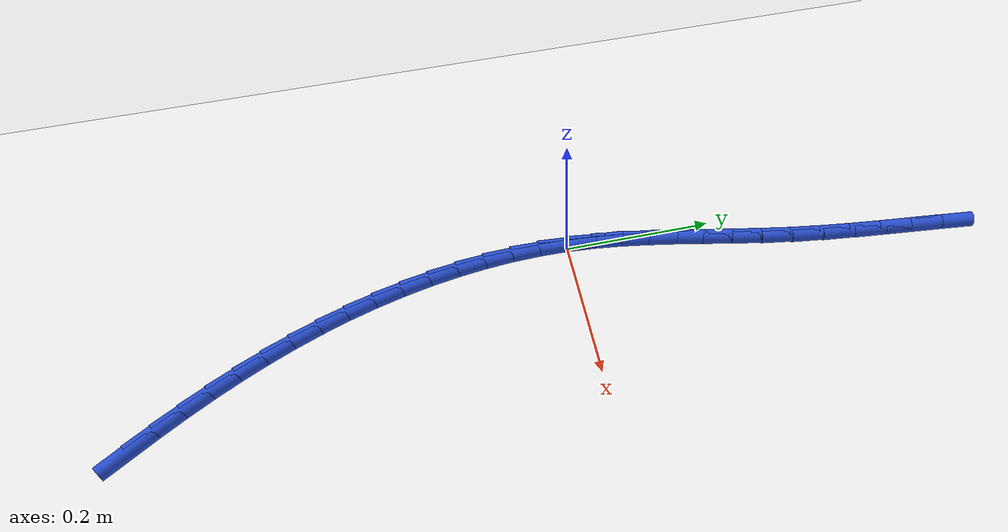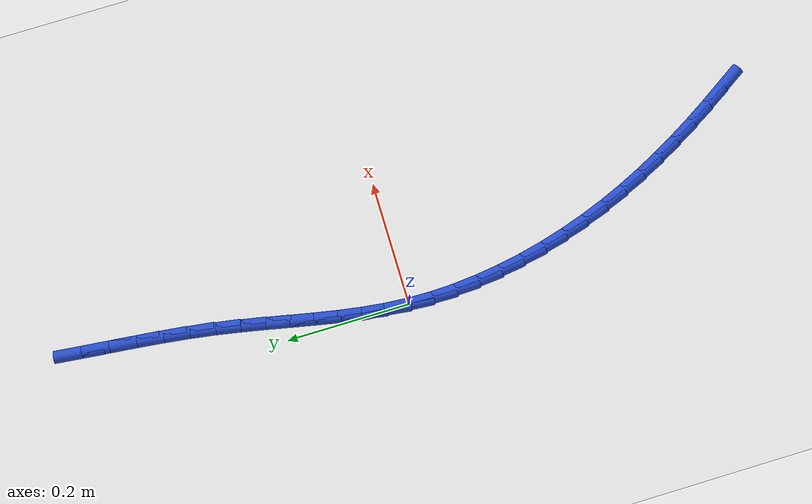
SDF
<sdf version="1.6">
 <world name="default">
  <model name="ground_plane">
   <static>1</static>
   <link name="link">
    <collision name="collision">
     <geometry><plane><normal>0 0 1</normal><size>100 100</size></plane></geometry>
     <surface><friction><ode><mu>100</mu><mu2>50</mu2></ode></friction></surface>
    </collision>
    <visual name="visual">
     <cast_shadows>0</cast_shadows>
     <geometry><plane><normal>0 0 1</normal><size>100 100</size></plane></geometry>
     <material>
      <script><uri>file://media/materials/scripts/gazebo.material</uri><name>Gazebo/WhiteGlow</name></script>
     </material>
    </visual>
   </link>
  </model>
  <model name="line">
   <link name="link_0">
    <pose>1.214306433183765e-17 -5.551115123125783e-17 0.01 0 1.57 1.4960967762465893</pose>
    <collision name="collision">
     <geometry><cylinder><radius>0.01</radius><length>0.08</length></cylinder></geometry>
    </collision>
    <visual name="visual">
     <material>
      <script><name>Gazebo/Blue</name><uri>file://media/materials/scripts/gazebo.material</uri></script>
     </material>
     <geometry><cylinder><radius>0.01</radius><length>0.08</length></cylinder></geometry>
    </visual>
   </link>
   <link name="link_1">
    <pose>0.002791364216330285 0.037298354604954585 0.01 0 1.57 1.4484200430386638</pose>
    <collision name="collision">
     <geometry><cylinder><radius>0.01</radius><length>0.08</length></cylinder></geometry>
    </collision>
    <visual name="visual">
     <material>
      <script><name>Gazebo/Blue</name><uri>file://media/materials/scripts/gazebo.material</uri></script>
     </material>
     <geometry><cylinder><radius>0.01</radius><length>0.08</length></cylinder></geometry>
    </visual>
   </link>
   <link name="link_2">
    <pose>0.007340194656034385 0.0742834623729324 0.01 0 1.57 1.411404170414992</pose>
    <collision name="collision">
     <geometry><cylinder><radius>0.01</radius><length>0.08</length></cylinder></geometry>
    </collision>
    <visual name="visual">
     <material>
      <script><name>Gazebo/Blue</name><uri>file://media/materials/scripts/gazebo.material</uri></script>
     </material>
     <geometry><cylinder><radius>0.01</radius><length>0.08</length></cylinder></geometry>
    </visual>
   </link>
   <link name="link_3">
    <pose>0.013272829891203326 0.11118809328527089 0.01 0 1.57 1.3855890138664382</pose>
    <collision name="collision">
     <geometry><cylinder><radius>0.01</radius><length>0.08</length></cylinder></geometry>
    </collision>
    <visual name="visual">
     <material>
      <script><name>Gazebo/Blue</name><uri>file://media/materials/scripts/gazebo.material</uri></script>
     </material>
     <geometry><cylinder><radius>0.01</radius><length>0.08</length></cylinder></geometry>
    </visual>
   </link>
   <link name="link_4">
    <pose>0.020215608493928106 0.14824501732330728 0.01 0 1.57 1.3710684263856114</pose>
    <collision name="collision">
     <geometry><cylinder><radius>0.01</radius><length>0.08</length></cylinder></geometry>
    </collision>
    <visual name="visual">
     <material>
      <script><name>Gazebo/Blue</name><uri>file://media/materials/scripts/gazebo.material</uri></script>
     </material>
     <geometry><cylinder><radius>0.01</radius><length>0.08</length></cylinder></geometry>
    </visual>
   </link>
   <link name="link_5">
    <pose>0.027794869036299765 0.1856870044683791 0.01 0 1.57 1.3675939372295634</pose>
    <collision name="collision">
     <geometry><cylinder><radius>0.01</radius><length>0.08</length></cylinder></geometry>
    </collision>
    <visual name="visual">
     <material>
      <script><name>Gazebo/Blue</name><uri>file://media/materials/scripts/gazebo.material</uri></script>
     </material>
     <geometry><cylinder><radius>0.01</radius><length>0.08</length></cylinder></geometry>
    </visual>
   </link>
   <link name="link_6">
    <pose>0.0356369500904093 0.22374682470182364 0.01 0 1.57 1.3746575311386873</pose>
    <collision name="collision">
     <geometry><cylinder><radius>0.01</radius><length>0.08</length></cylinder></geometry>
    </collision>
    <visual name="visual">
     <material>
      <script><name>Gazebo/Blue</name><uri>file://media/materials/scripts/gazebo.material</uri></script>
     </material>
     <geometry><cylinder><radius>0.01</radius><length>0.08</length></cylinder></geometry>
    </visual>
   </link>
   <link name="link_7">
    <pose>0.04336819022834772 0.2626572480049783 0.01 0 1.57 1.3915446354443641</pose>
    <collision name="collision">
     <geometry><cylinder><radius>0.01</radius><length>0.08</length></cylinder></geometry>
    </collision>
    <visual name="visual">
     <material>
      <script><name>Gazebo/Blue</name><uri>file://media/materials/scripts/gazebo.material</uri></script>
     </material>
     <geometry><cylinder><radius>0.01</radius><length>0.08</length></cylinder></geometry>
    </visual>
   </link>
   <link name="link_8">
    <pose>0.05061492802220603 0.30265104435918044 0.01 0 1.57 1.4170676760448138</pose>
    <collision name="collision">
     <geometry><cylinder><radius>0.01</radius><length>0.08</length></cylinder></geometry>
    </collision>
    <visual name="visual">
     <material>
      <script><name>Gazebo/Blue</name><uri>file://media/materials/scripts/gazebo.material</uri></script>
     </material>
     <geometry><cylinder><radius>0.01</radius><length>0.08</length></cylinder></geometry>
    </visual>
   </link>
   <link name="link_9">
    <pose>0.05701441893428005 0.34395108369674005 0.01 0 1.57 1.4424523275774874</pose>
    <collision name="collision">
     <geometry><cylinder><radius>0.01</radius><length>0.08</length></cylinder></geometry>
    </collision>
    <visual name="visual">
     <material>
      <script><name>Gazebo/Blue</name><uri>file://media/materials/scripts/gazebo.material</uri></script>
     </material>
     <geometry><cylinder><radius>0.01</radius><length>0.08</length></cylinder></geometry>
    </visual>
   </link>
   <link name="link_10">
    <pose>0.06250627943232127 0.3865060380124679 0.01 0 1.57 1.4594717351525122</pose>
    <collision name="collision">
     <geometry><cylinder><radius>0.01</radius><length>0.08</length></cylinder></geometry>
    </collision>
    <visual name="visual">
     <material>
      <script><name>Gazebo/Blue</name><uri>file://media/materials/scripts/gazebo.material</uri></script>
     </material>
     <geometry><cylinder><radius>0.01</radius><length>0.08</length></cylinder></geometry>
    </visual>
   </link>
   <link name="link_11">
    <pose>0.06736405370102008 0.42996175489721356 0.01 0 1.57 1.468521504528391</pose>
    <collision name="collision">
     <geometry><cylinder><radius>0.01</radius><length>0.08</length></cylinder></geometry>
    </collision>
    <visual name="visual">
     <material>
      <script><name>Gazebo/Blue</name><uri>file://media/materials/scripts/gazebo.material</uri></script>
     </material>
     <geometry><cylinder><radius>0.01</radius><length>0.08</length></cylinder></geometry>
    </visual>
   </link>
   <link name="link_12">
    <pose>0.07187853568005004 0.47394843889542354 0.01 0 1.57 1.4700692810529499</pose>
    <collision name="collision">
     <geometry><cylinder><radius>0.01</radius><length>0.08</length></cylinder></geometry>
    </collision>
    <visual name="visual">
     <material>
      <script><name>Gazebo/Blue</name><uri>file://media/materials/scripts/gazebo.material</uri></script>
     </material>
     <geometry><cylinder><radius>0.01</radius><length>0.08</length></cylinder></geometry>
    </visual>
   </link>
   <link name="link_13">
    <pose>0.07634051930908475 0.518096294551545 0.01 0 1.57 1.4642293117819987</pose>
    <collision name="collision">
     <geometry><cylinder><radius>0.01</radius><length>0.08</length></cylinder></geometry>
    </collision>
    <visual name="visual">
     <material>
      <script><name>Gazebo/Blue</name><uri>file://media/materials/scripts/gazebo.material</uri></script>
     </material>
     <geometry><cylinder><radius>0.01</radius><length>0.08</length></cylinder></geometry>
    </visual>
   </link>
   <link name="link_174">
    <pose>0.18769461727635856 -0.5800249586519508 0.01 0 1.57 -0.9965029184418454</pose>
    <collision name="collision">
     <geometry><cylinder><radius>0.01</radius><length>0.08</length></cylinder></geometry>
    </collision>
    <visual name="visual">
     <material>
      <script><name>Gazebo/Blue</name><uri>file://media/materials/scripts/gazebo.material</uri></script>
     </material>
     <geometry><cylinder><radius>0.01</radius><length>0.08</length></cylinder></geometry>
    </visual>
   </link>
   <link name="link_175">
    <pose>0.1667990356456752 -0.5477309783249769 0.01 0 1.57 -1.019851044646847</pose>
    <collision name="collision">
     <geometry><cylinder><radius>0.01</radius><length>0.08</length></cylinder></geometry>
    </collision>
    <visual name="visual">
     <material>
      <script><name>Gazebo/Blue</name><uri>file://media/materials/scripts/gazebo.material</uri></script>
     </material>
     <geometry><cylinder><radius>0.01</radius><length>0.08</length></cylinder></geometry>
    </visual>
   </link>
   <link name="link_176">
    <pose>0.14662726884350608 -0.5148996782245849 0.01 0 1.57 -1.0460476736791913</pose>
    <collision name="collision">
     <geometry><cylinder><radius>0.01</radius><length>0.08</length></cylinder></geometry>
    </collision>
    <visual name="visual">
     <material>
      <script><name>Gazebo/Blue</name><uri>file://media/materials/scripts/gazebo.material</uri></script>
     </material>
     <geometry><cylinder><radius>0.01</radius><length>0.08</length></cylinder></geometry>
    </visual>
   </link>
   <link name="link_177">
    <pose>0.12729229629333874 -0.4814992780768908 0.01 0 1.57 -1.0751051799613611</pose>
    <collision name="collision">
     <geometry><cylinder><radius>0.01</radius><length>0.08</length></cylinder></geometry>
    </collision>
    <visual name="visual">
     <material>
      <script><name>Gazebo/Blue</name><uri>file://media/materials/scripts/gazebo.material</uri></script>
     </material>
     <geometry><cylinder><radius>0.01</radius><length>0.08</length></cylinder></geometry>
    </visual>
   </link>
   <link name="link_178">
    <pose>0.10890709741866043 -0.4474979976080094 0.01 0 1.57 -1.1070222546237012</pose>
    <collision name="collision">
     <geometry><cylinder><radius>0.01</radius><length>0.08</length></cylinder></geometry>
    </collision>
    <visual name="visual">
     <material>
      <script><name>Gazebo/Blue</name><uri>file://media/materials/scripts/gazebo.material</uri></script>
     </material>
     <geometry><cylinder><radius>0.01</radius><length>0.08</length></cylinder></geometry>
    </visual>
   </link>
   <link name="link_179">
    <pose>0.09158465164295895 -0.41286405654405656 0.01 0 1.57 -1.1417767307606628</pose>
    <collision name="collision">
     <geometry><cylinder><radius>0.01</radius><length>0.08</length></cylinder></geometry>
    </collision>
    <visual name="visual">
     <material>
      <script><name>Gazebo/Blue</name><uri>file://media/materials/scripts/gazebo.material</uri></script>
     </material>
     <geometry><cylinder><radius>0.01</radius><length>0.08</length></cylinder></geometry>
    </visual>
   </link>
   <link name="link_180">
    <pose>0.07543793838972095 -0.3775656746111462 0.01 0 1.57 -1.1793179489593903</pose>
    <collision name="collision">
     <geometry><cylinder><radius>0.01</radius><length>0.08</length></cylinder></geometry>
    </collision>
    <visual name="visual">
     <material>
      <script><name>Gazebo/Blue</name><uri>file://media/materials/scripts/gazebo.material</uri></script>
     </material>
     <geometry><cylinder><radius>0.01</radius><length>0.08</length></cylinder></geometry>
    </visual>
   </link>
   <link name="link_181">
    <pose>0.06057993708243412 -0.3415710715353941 0.01 0 1.57 -1.2194963506346899</pose>
    <collision name="collision">
     <geometry><cylinder><radius>0.01</radius><length>0.08</length></cylinder></geometry>
    </collision>
    <visual name="visual">
     <material>
      <script><name>Gazebo/Blue</name><uri>file://media/materials/scripts/gazebo.material</uri></script>
     </material>
     <geometry><cylinder><radius>0.01</radius><length>0.08</length></cylinder></geometry>
    </visual>
   </link>
   <link name="link_182">
    <pose>0.04712275334319546 -0.30485321049307873 0.01 0 1.57 -1.2610751732597723</pose>
    <collision name="collision">
     <geometry><cylinder><radius>0.01</radius><length>0.08</length></cylinder></geometry>
    </collision>
    <visual name="visual">
     <material>
      <script><name>Gazebo/Blue</name><uri>file://media/materials/scripts/gazebo.material</uri></script>
     </material>
     <geometry><cylinder><radius>0.01</radius><length>0.08</length></cylinder></geometry>
    </visual>
   </link>
   <link name="link_183">
    <pose>0.03516157739422184 -0.2674768802826352 0.01 0 1.57 -1.303254645788186</pose>
    <collision name="collision">
     <geometry><cylinder><radius>0.01</radius><length>0.08</length></cylinder></geometry>
    </collision>
    <visual name="visual">
     <material>
      <script><name>Gazebo/Blue</name><uri>file://media/materials/scripts/gazebo.material</uri></script>
     </material>
     <geometry><cylinder><radius>0.01</radius><length>0.08</length></cylinder></geometry>
    </visual>
   </link>
   <link name="link_184">
    <pose>0.024776283097164772 -0.2295900149043894 0.01 0 1.57 -1.3463822926338664</pose>
    <collision name="collision">
     <geometry><cylinder><radius>0.01</radius><length>0.08</length></cylinder></geometry>
    </collision>
    <visual name="visual">
     <material>
      <script><name>Gazebo/Blue</name><uri>file://media/materials/scripts/gazebo.material</uri></script>
     </material>
     <geometry><cylinder><radius>0.01</radius><length>0.08</length></cylinder></geometry>
    </visual>
   </link>
   <link name="link_185">
    <pose>0.016046191309076568 -0.19134355035635806 0.01 0 1.57 -1.390849011364804</pose>
    <collision name="collision">
     <geometry><cylinder><radius>0.01</radius><length>0.08</length></cylinder></geometry>
    </collision>
    <visual name="visual">
     <material>
      <script><name>Gazebo/Blue</name><uri>file://media/materials/scripts/gazebo.material</uri></script>
     </material>
     <geometry><cylinder><radius>0.01</radius><length>0.08</length></cylinder></geometry>
    </visual>
   </link>
   <link name="link_186">
    <pose>0.009050622887009696 -0.15288842263655855 0.01 0 1.57 -1.4370541722728845</pose>
    <collision name="collision">
     <geometry><cylinder><radius>0.01</radius><length>0.08</length></cylinder></geometry>
    </collision>
    <visual name="visual">
     <material>
      <script><name>Gazebo/Blue</name><uri>file://media/materials/scripts/gazebo.material</uri></script>
     </material>
     <geometry><cylinder><radius>0.01</radius><length>0.08</length></cylinder></geometry>
    </visual>
   </link>
   <link name="link_187">
    <pose>0.0038688986880161765 -0.1143755677430059 0.01 0 1.57 -1.4854086874370969</pose>
    <collision name="collision">
     <geometry><cylinder><radius>0.01</radius><length>0.08</length></cylinder></geometry>
    </collision>
    <visual name="visual">
     <material>
      <script><name>Gazebo/Blue</name><uri>file://media/materials/scripts/gazebo.material</uri></script>
     </material>
     <geometry><cylinder><radius>0.01</radius><length>0.08</length></cylinder></geometry>
    </visual>
   </link>
   <link name="link_188">
    <pose>0.0005803395691485079 -0.07595592167371751 0.01 0 1.57 -1.53633568747939</pose>
    <collision name="collision">
     <geometry><cylinder><radius>0.01</radius><length>0.08</length></cylinder></geometry>
    </collision>
    <visual name="visual">
     <material>
      <script><name>Gazebo/Blue</name><uri>file://media/materials/scripts/gazebo.material</uri></script>
     </material>
     <geometry><cylinder><radius>0.01</radius><length>0.08</length></cylinder></geometry>
    </visual>
   </link>
   <link name="link_189">
    <pose>-0.0007357336125409907 -0.037780420426710044 0.01 0 1.57 1.5513248487052929</pose>
    <collision name="collision">
     <geometry><cylinder><radius>0.01</radius><length>0.08</length></cylinder></geometry>
    </collision>
    <visual name="visual">
     <material>
      <script><name>Gazebo/Blue</name><uri>file://media/materials/scripts/gazebo.material</uri></script>
     </material>
     <geometry><cylinder><radius>0.01</radius><length>0.08</length></cylinder></geometry>
    </visual>
   </link>
   <link name="link_190">
    <pose>1.734723475976807e-17 -1.3183898417423734e-16 0.01 0 1.57 1.4939529797577238</pose>
    <collision name="collision">
     <geometry><cylinder><radius>0.01</radius><length>0.08</length></cylinder></geometry>
    </collision>
    <visual name="visual">
     <material>
      <script><name>Gazebo/Blue</name><uri>file://media/materials/scripts/gazebo.material</uri></script>
     </material>
     <geometry><cylinder><radius>0.01</radius><length>0.08</length></cylinder></geometry>
    </visual>
   </link>
   <link name="link_191">
    <pose>0.00286686126382385 0.037234403608395625 0.01 0 1.57 1.4939529797577236</pose>
    <collision name="collision">
     <geometry><cylinder><radius>0.01</radius><length>0.08</length></cylinder></geometry>
    </collision>
    <visual name="visual">
     <material>
      <script><name>Gazebo/Blue</name><uri>file://media/materials/scripts/gazebo.material</uri></script>
     </material>
     <geometry><cylinder><radius>0.01</radius><length>0.08</length></cylinder></geometry>
    </visual>
   </link>
  </model>
 </world>
</sdf>
